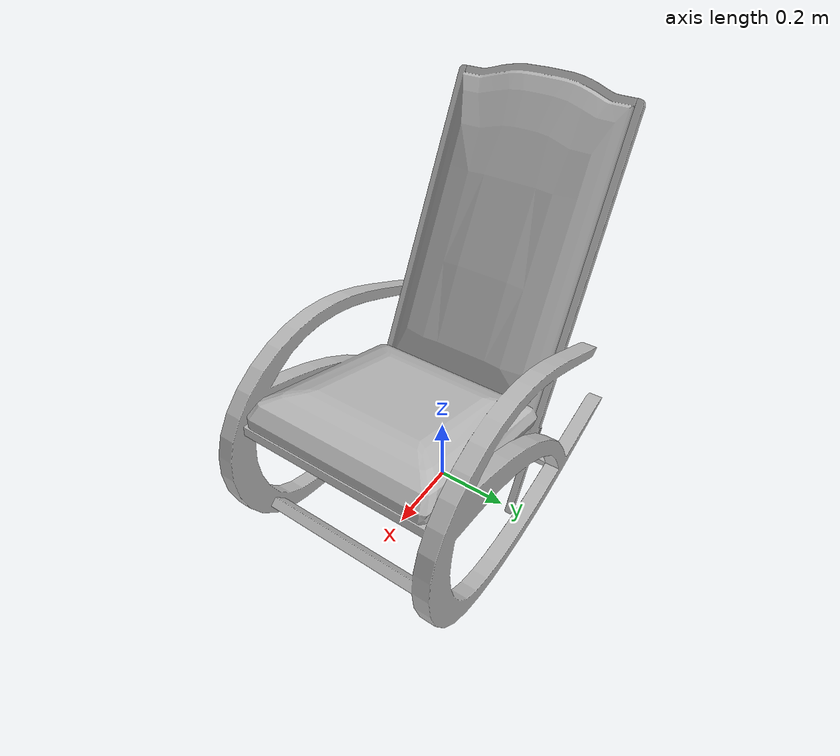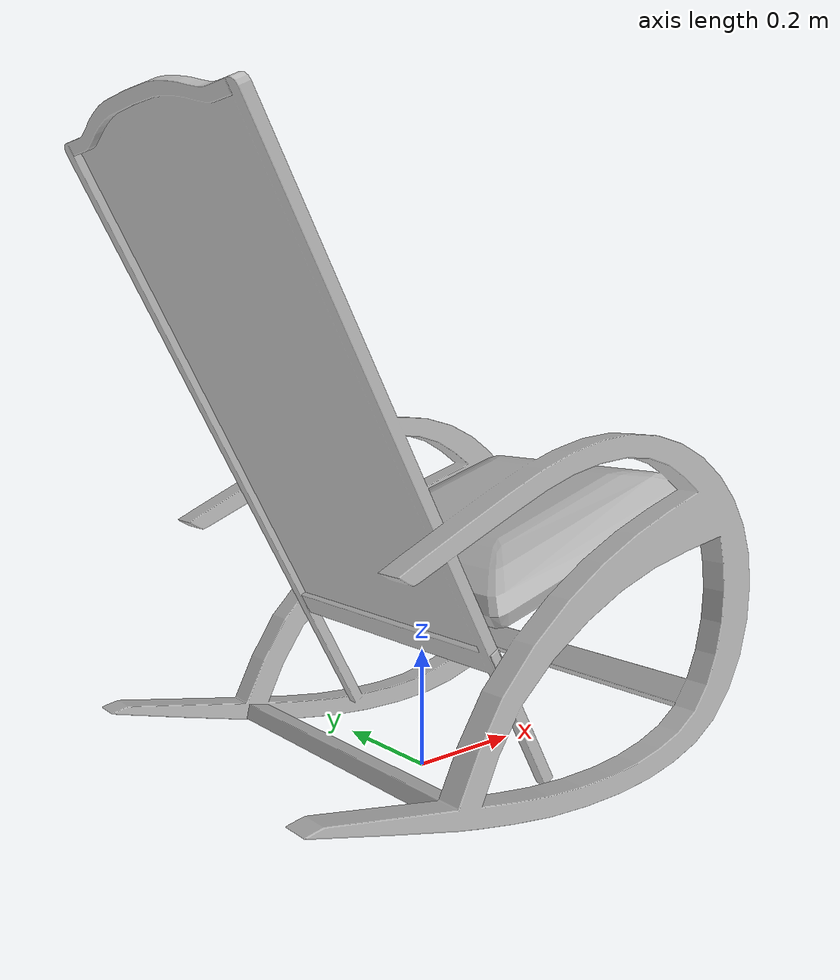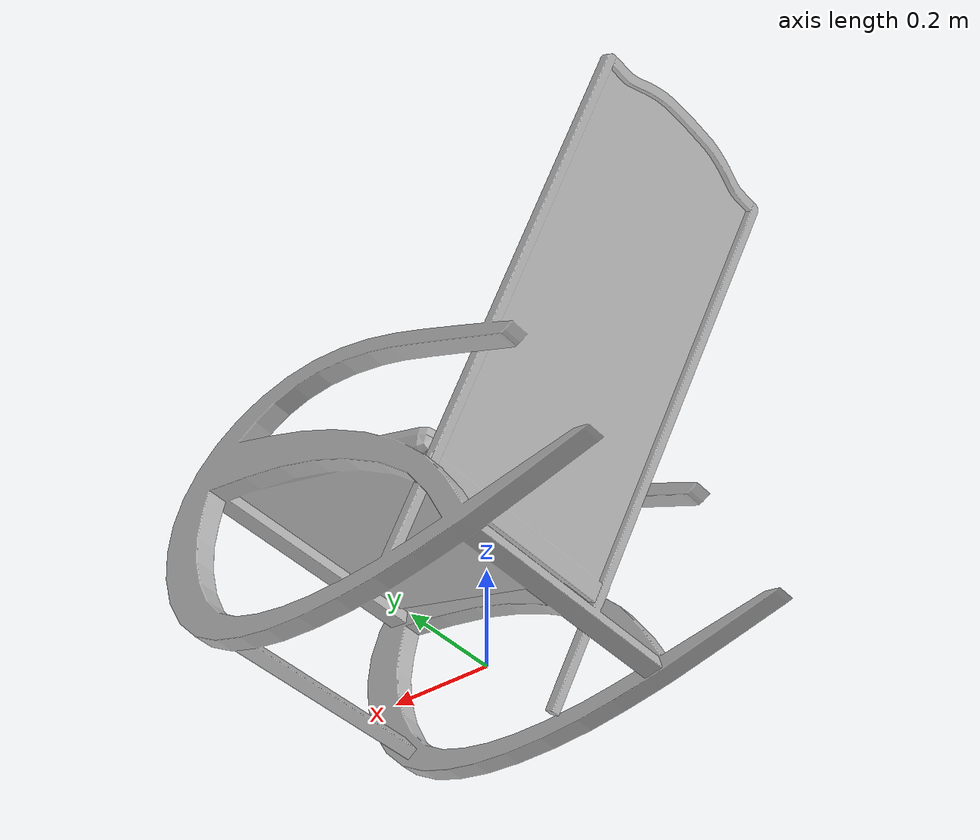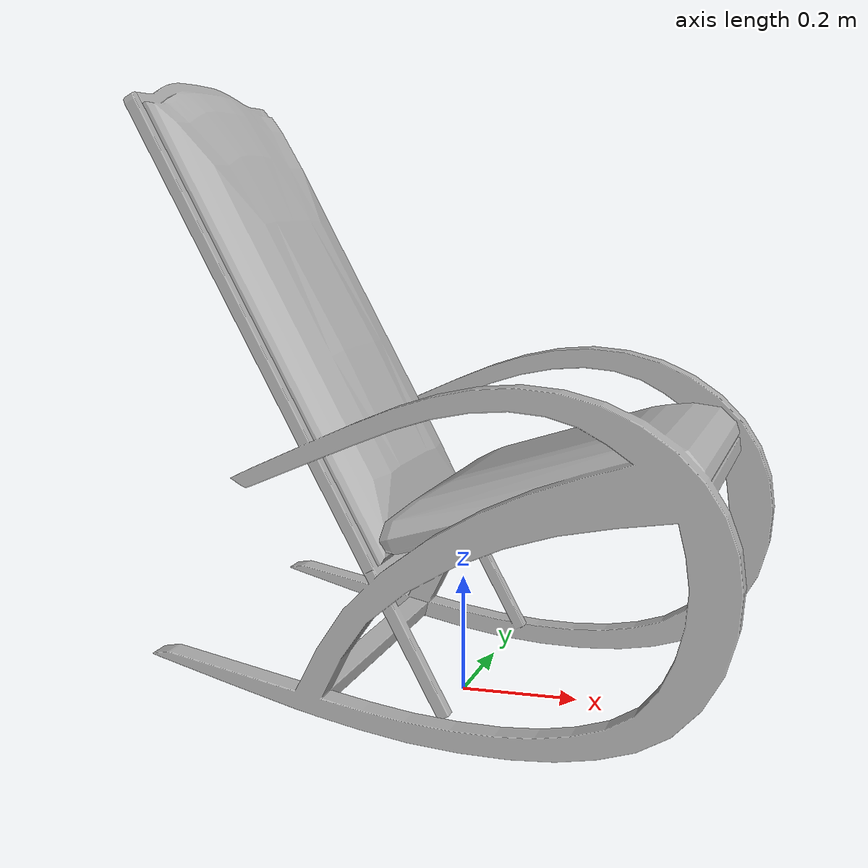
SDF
<?xml version='1.0'?>
<sdf version='1.4'>
  <model name='196'>
    <pose>0 0 0 0 0 0</pose>
    <static>true</static>
    <link name='link'>
      <collision name='collision'>
        <pose>0 0 0 0 0 0</pose>
        <geometry>
          <box>
            <size>0.999507 0.6 2</size>
          </box>
        </geometry>
      </collision>
      <visual name='visual'>
        <pose>0 0 0 0 0 0</pose>
        <geometry>
          <mesh><uri>model://196/196.dae</uri></mesh>
        </geometry>
      </visual>
    </link>
  </model>
</sdf>
